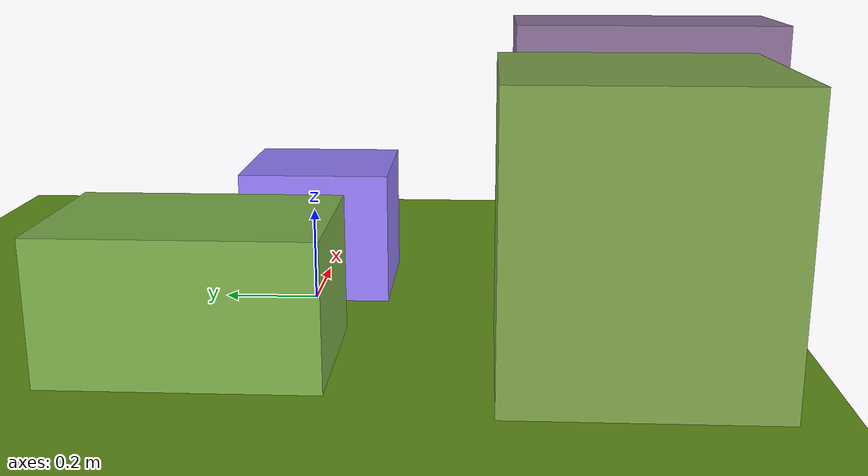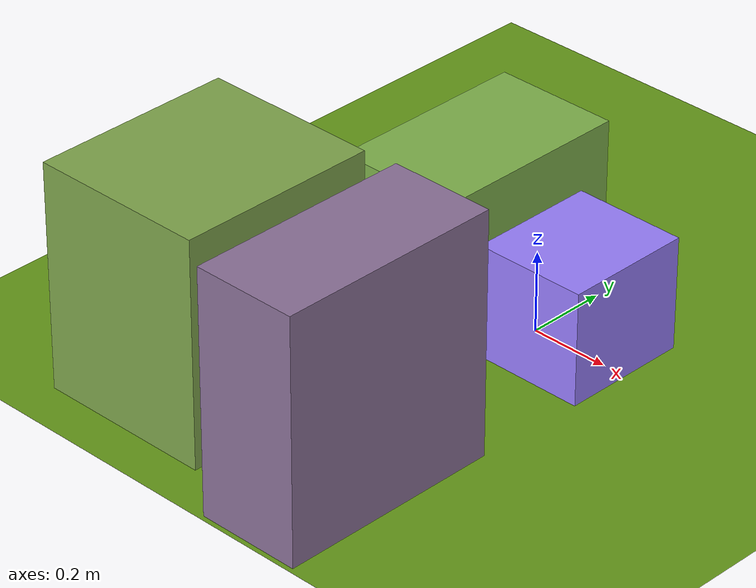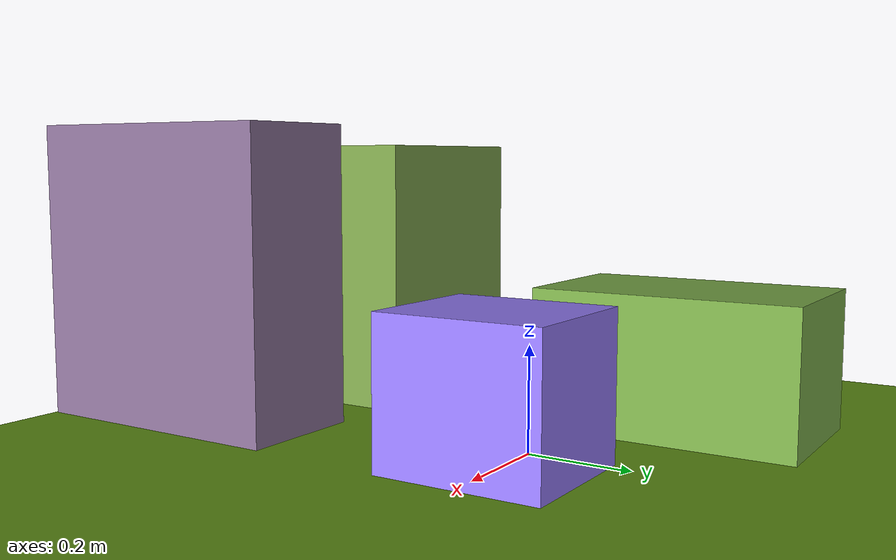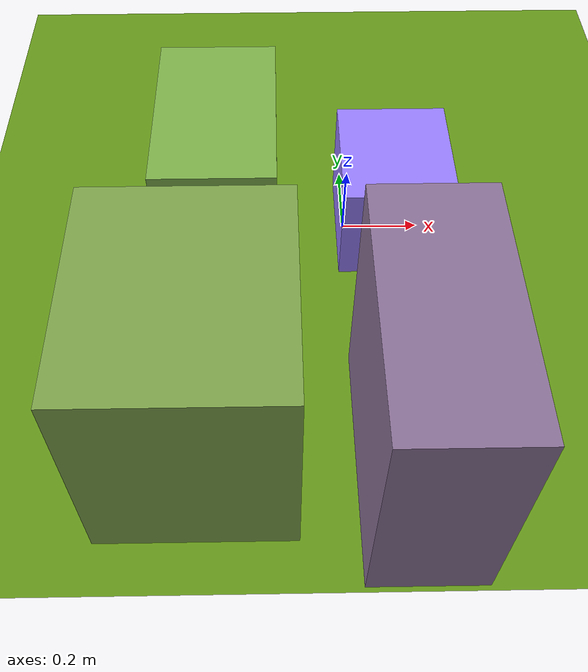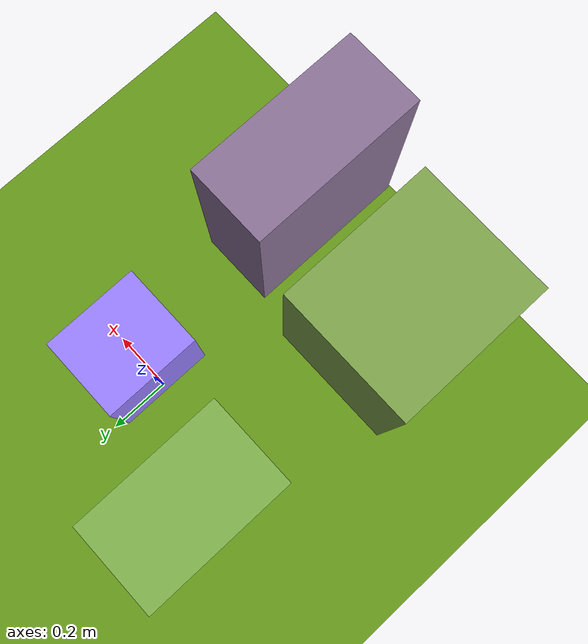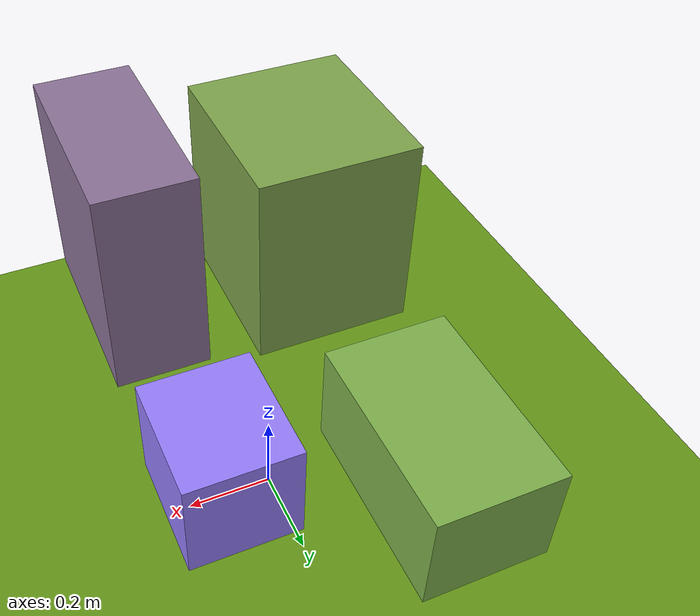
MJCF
<mujoco>
   <asset>
<texture type="skybox" builtin="gradient" rgb1="0.5 1.0 0.7" rgb2="0.8 0.4 0.9" width="256" height="256"/>
<texture name="checker_0" builtin="checker" type="2d" rgb1="0.0 0.9 0.1" rgb2="1.0 0.4 0.5" width="200" height="200"/>
<texture name="checker_1" builtin="checker" type="2d" rgb1="0.6 0.6 1.0" rgb2="0.5 0.3 0.2" width="200" height="200"/>
<texture name="flat_2" builtin="flat" rgb1="0.6 0.5 1.0" rgb2="0.6 0.5 1.0"  width="200" height="200"/>
<texture name="flat_3" builtin="flat" rgb1="0.5 0.7 0.3" rgb2="0.5 0.7 0.3"  width="200" height="200"/><material name="checker_0_mat" reflectance="0" texrepeat="8 8" texture="checker_0" texuniform="false" />
<material name="checker_1_mat" reflectance="0" texrepeat="2 2" texture="checker_1" texuniform="false" />
<material name="flat_2_mat" reflectance="0" texture="flat_2" texuniform="true"/>
<material name="flat_3_mat" reflectance="0" texture="flat_3" texuniform="true"/>
   </asset>

   <worldbody>
      <light diffuse=".9 .9 .9" pos="0 0 3" dir="0 0 -1"/>
     <geom type="plane" size="1 1 0.1" rgba="0.4 0.6 0.1 1"/>
<geom type="box" pos="-0.36 -0.64 0.28" size="0.22 0.25 0.28" material="checker_0_mat" />
<geom type="box" pos="0.12 -0.71 0.3" size="0.13 0.28 0.3" material="checker_1_mat" />
<geom type="box" pos="0.12 -0.0 0.14" size="0.14 0.16 0.14" material="flat_2_mat" />
<geom type="box" pos="-0.34 0.17 0.14" size="0.16 0.26 0.14" material="flat_3_mat" /><camera euler="60 0 180" fovy="60" name="camera_a" pos="0 -1.5 1"></camera>   </worldbody>
</mujoco>
